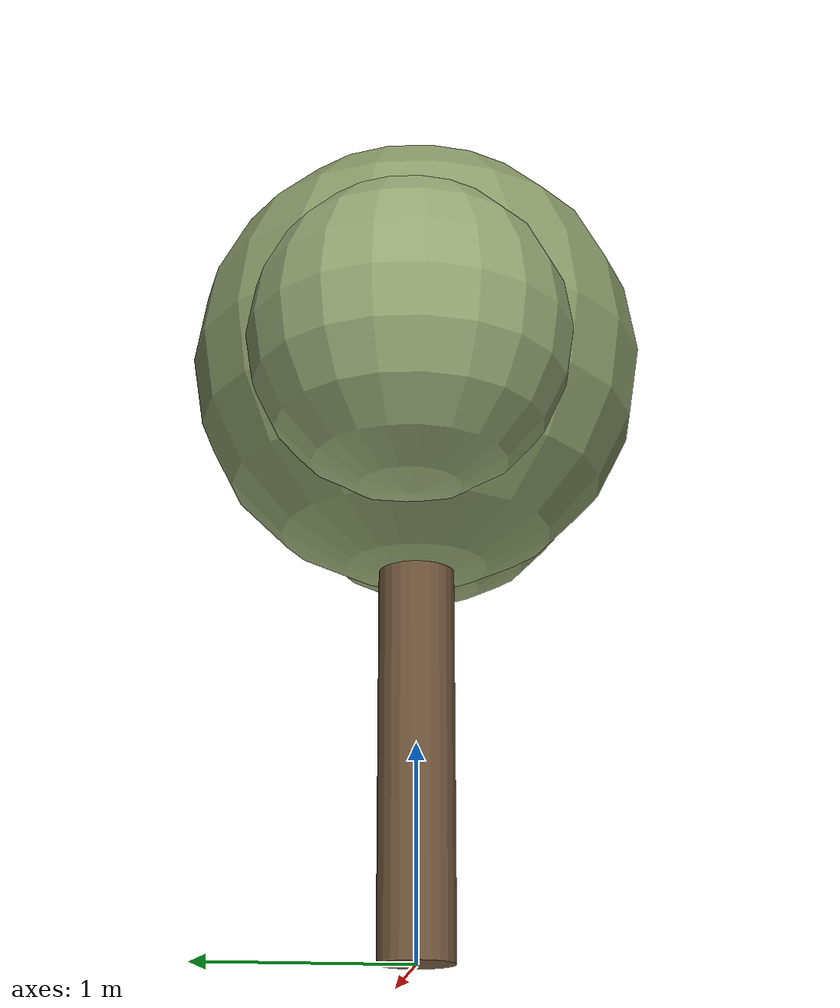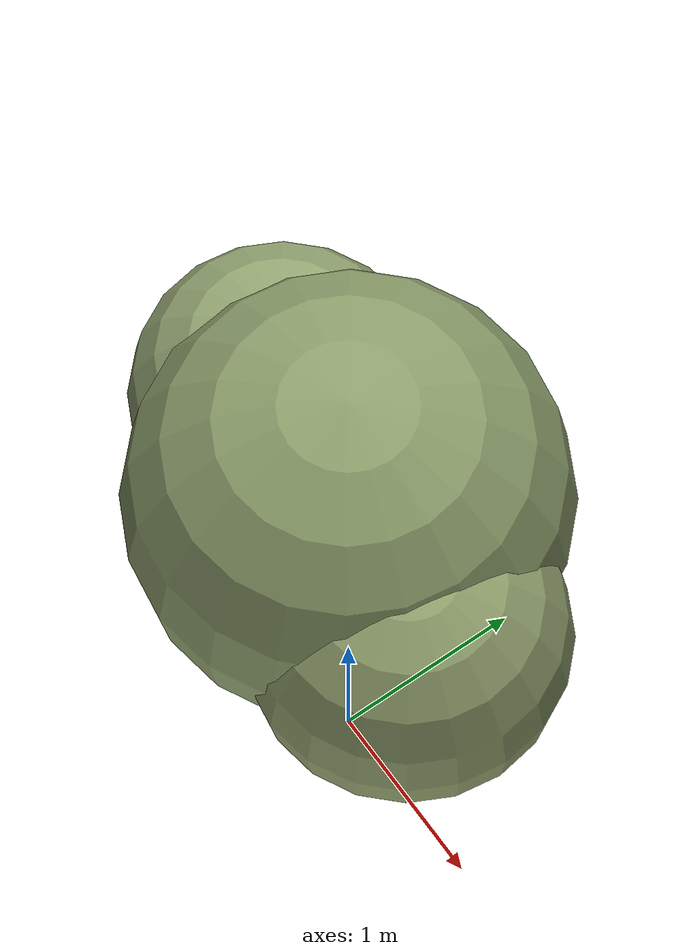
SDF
<?xml version="1.0"?>
<sdf version="1.10">
  <model name="olive_tree">
    <static>true</static>

    <!-- Trunk -->
    <link name="trunk">
      <pose>0 0 1.2 0 0 0</pose>
      <visual name="v"><geometry><cylinder><radius>0.18</radius><length>2.4</length></cylinder></geometry>
        <material>
          <ambient>0.28 0.22 0.16 1</ambient>
          <diffuse>0.42 0.32 0.22 1</diffuse>
          <specular>0.05 0.04 0.03 1</specular>
        </material>
      </visual>
      <collision name="c"><geometry><cylinder><radius>0.18</radius><length>2.4</length></cylinder></geometry></collision>
    </link>

    <!-- Canopy: 3 overlapping ellipsoid-like spheres in silvery-olive green -->
    <link name="canopy_main">
      <pose>0 0 2.9 0 0 0</pose>
      <visual name="v"><geometry><sphere><radius>1.1</radius></sphere></geometry>
        <material>
          <ambient>0.40 0.46 0.30 1</ambient>
          <diffuse>0.55 0.62 0.42 1</diffuse>
          <specular>0.08 0.08 0.08 1</specular>
        </material>
      </visual>
    </link>
    <link name="canopy_left">
      <pose>-0.7 0.1 2.7 0 0 0</pose>
      <visual name="v"><geometry><sphere><radius>0.75</radius></sphere></geometry>
        <material>
          <ambient>0.42 0.48 0.32 1</ambient>
          <diffuse>0.58 0.65 0.45 1</diffuse>
        </material>
      </visual>
    </link>
    <link name="canopy_right">
      <pose>0.7 -0.15 2.75 0 0 0</pose>
      <visual name="v"><geometry><sphere><radius>0.80</radius></sphere></geometry>
        <material>
          <ambient>0.40 0.46 0.30 1</ambient>
          <diffuse>0.56 0.62 0.42 1</diffuse>
        </material>
      </visual>
    </link>

    <joint name="j_main"  type="fixed"><parent>trunk</parent><child>canopy_main</child></joint>
    <joint name="j_left"  type="fixed"><parent>trunk</parent><child>canopy_left</child></joint>
    <joint name="j_right" type="fixed"><parent>trunk</parent><child>canopy_right</child></joint>
  </model>
</sdf>
